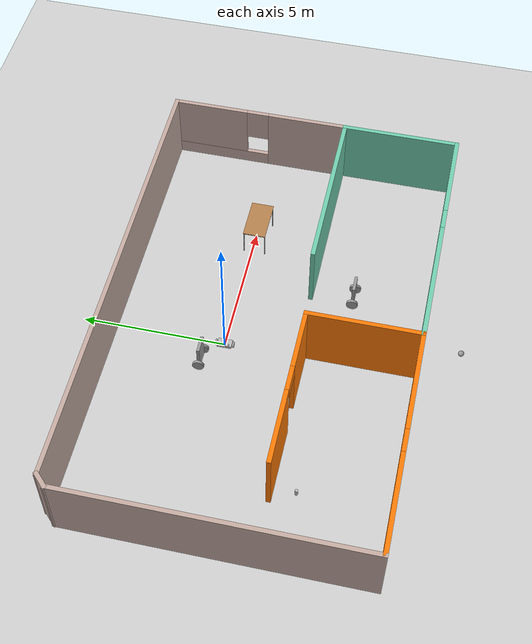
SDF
<sdf version="1.6">
 <world name="default">
  <plugin name="welcome_message" filename="libwelcome_message.so"/>
  <light name="sun" type="directional">
   <pose>0 0 10 0 -0 0</pose>
   <diffuse>0.8 0.8 0.8 1</diffuse>
   <specular>0.1 0.1 0.1 1</specular>
   <attenuation>
    <range>1000</range>
    <constant>0.9</constant>
    <linear>0.01</linear>
    <quadratic>0.001</quadratic>
   </attenuation>
   <direction>-0.5 0.5 -1</direction>
  </light>
  <model name="ground_plane">
   <static>1</static>
   <link name="link">
    <collision name="collision">
     <geometry><plane><normal>0 0 1</normal><size>100 100</size></plane></geometry>
     <surface><friction><ode><mu>100</mu><mu2>50</mu2></ode></friction></surface>
    </collision>
    <visual name="visual">
     <cast_shadows>0</cast_shadows>
     <geometry><plane><normal>0 0 1</normal><size>100 100</size></plane></geometry>
     <material>
      <script><uri>file://media/materials/scripts/gazebo.material</uri><name>Gazebo/Grey</name></script>
     </material>
    </visual>
   </link>
  </model>
  <gravity>0 0 -9.8</gravity>
  <magnetic_field>6e-06 2.3e-05 -4.2e-05</magnetic_field>
  <atmosphere type="adiabatic"/>
  <physics name="default_physics" default="0" type="ode">
   <max_step_size>0.001</max_step_size>
   <real_time_factor>1</real_time_factor>
   <real_time_update_rate>1000</real_time_update_rate>
  </physics>
  <scene><ambient>0.4 0.4 0.4 1</ambient><background>0.7 0.7 0.7 1</background><shadows>1</shadows></scene>
  <spherical_coordinates>
   <surface_model>EARTH_WGS84</surface_model>
   <latitude_deg>0</latitude_deg>
   <longitude_deg>0</longitude_deg>
   <elevation>0</elevation>
   <heading_deg>0</heading_deg>
  </spherical_coordinates>
  <model name="project1_robot">
   <link name="link_0">
    <pose>-0.000665 0 0.199997 0 -0 0</pose>
    <inertial>
     <mass>1</mass>
     <inertia>
      <ixx>0.166667</ixx>
      <ixy>0</ixy>
      <ixz>0</ixz>
      <iyy>0.166667</iyy>
      <iyz>0</iyz>
      <izz>0.166667</izz>
     </inertia>
    </inertial>
    <visual name="visual">
     <geometry><box><size>0.6 0.1 0.9</size></box></geometry>
     <material>
      <lighting>1</lighting>
      <script><uri>file://media/materials/scripts/gazebo.material</uri><name>Gazebo/Grey</name></script>
      <shader type="pixel"><normal_map>__default__</normal_map></shader>
      <ambient>0.3 0.3 0.3 1</ambient>
      <diffuse>0.7 0.7 0.7 1</diffuse>
      <specular>0.01 0.01 0.01 1</specular>
      <emissive>0 0 0 1</emissive>
     </material>
    </visual>
    <collision name="collision">
     <geometry><box><size>0.6 0.1 1</size></box></geometry>
     <surface>
      <friction>
       <ode><mu>1</mu><mu2>1</mu2><fdir1>0 0 0</fdir1><slip1>0</slip1><slip2>0</slip2></ode>
       <torsional>
        <coefficient>1</coefficient>
        <patch_radius>0</patch_radius>
        <surface_radius>0</surface_radius>
        <use_patch_radius>1</use_patch_radius>
        <ode><slip>0</slip></ode>
       </torsional>
      </friction>
      <bounce><restitution_coefficient>0</restitution_coefficient><threshold>1e+06</threshold></bounce>
      <contact>
       <collide_without_contact>0</collide_without_contact>
       <collide_without_contact_bitmask>1</collide_without_contact_bitmask>
       <collide_bitmask>1</collide_bitmask>
       <ode>
        <soft_cfm>0</soft_cfm>
        <soft_erp>0.2</soft_erp>
        <kp>1e+13</kp>
        <kd>1</kd>
        <max_vel>0.01</max_vel>
        <min_depth>0</min_depth>
       </ode>
       <bullet>
        <split_impulse>1</split_impulse>
        <split_impulse_penetration_threshold>-0.01</split_impulse_penetration_threshold>
        <soft_cfm>0</soft_cfm>
        <soft_erp>0.2</soft_erp>
        <kp>1e+13</kp>
        <kd>1</kd>
       </bullet>
      </contact>
     </surface>
    </collision>
   </link>
   <link name="link_1">
    <pose>0.351352 -0 -0.099508 0 -0.01 0</pose>
    <inertial>
     <mass>1</mass>
     <inertia><ixx>0.145833</ixx><ixy>0</ixy><ixz>0</ixz><iyy>0.145833</iyy><iyz>0</iyz><izz>0.125</izz></inertia>
    </inertial>
    <visual name="visual">
     <pose>0 0 0 0 1.5707 0</pose>
     <geometry><cylinder><radius>0.2</radius><length>0.1</length></cylinder></geometry>
     <material>
      <lighting>1</lighting>
      <script><uri>file://media/materials/scripts/gazebo.material</uri><name>Gazebo/Grey</name></script>
      <shader type="pixel"><normal_map>__default__</normal_map></shader>
      <ambient>0.3 0.3 0.3 1</ambient>
      <diffuse>0.7 0.7 0.7 1</diffuse>
      <specular>0.01 0.01 0.01 1</specular>
      <emissive>0 0 0 1</emissive>
     </material>
    </visual>
    <collision name="collision">
     <pose>0 0 0 0 1.5707 0</pose>
     <geometry><cylinder><radius>0.2</radius><length>0.1</length></cylinder></geometry>
     <surface>
      <friction>
       <ode><mu>1</mu><mu2>1</mu2><fdir1>0 0 0</fdir1><slip1>0</slip1><slip2>0</slip2></ode>
       <torsional>
        <coefficient>1</coefficient>
        <patch_radius>0</patch_radius>
        <surface_radius>0</surface_radius>
        <use_patch_radius>1</use_patch_radius>
        <ode><slip>0</slip></ode>
       </torsional>
      </friction>
      <bounce><restitution_coefficient>0</restitution_coefficient><threshold>1e+06</threshold></bounce>
      <contact>
       <collide_without_contact>0</collide_without_contact>
       <collide_without_contact_bitmask>1</collide_without_contact_bitmask>
       <collide_bitmask>1</collide_bitmask>
       <ode>
        <soft_cfm>0</soft_cfm>
        <soft_erp>0.2</soft_erp>
        <kp>1e+13</kp>
        <kd>1</kd>
        <max_vel>0.01</max_vel>
        <min_depth>0</min_depth>
       </ode>
       <bullet>
        <split_impulse>1</split_impulse>
        <split_impulse_penetration_threshold>-0.01</split_impulse_penetration_threshold>
        <soft_cfm>0</soft_cfm>
        <soft_erp>0.2</soft_erp>
        <kp>1e+13</kp>
        <kd>1</kd>
       </bullet>
      </contact>
     </surface>
    </collision>
   </link>
   <link name="link_1_clone">
    <pose>-0.350684 0 -0.099999 0 -0 0</pose>
    <inertial>
     <mass>1</mass>
     <inertia><ixx>0.145833</ixx><ixy>0</ixy><ixz>0</ixz><iyy>0.145833</iyy><iyz>0</iyz><izz>0.125</izz></inertia>
    </inertial>
    <visual name="visual">
     <pose>0 0 0 0 1.5707 0</pose>
     <geometry><cylinder><radius>0.2</radius><length>0.1</length></cylinder></geometry>
     <material>
      <lighting>1</lighting>
      <script><uri>file://media/materials/scripts/gazebo.material</uri><name>Gazebo/Grey</name></script>
      <shader type="pixel"><normal_map>__default__</normal_map></shader>
      <ambient>0.3 0.3 0.3 1</ambient>
      <diffuse>0.7 0.7 0.7 1</diffuse>
      <specular>0.01 0.01 0.01 1</specular>
      <emissive>0 0 0 1</emissive>
     </material>
    </visual>
    <collision name="collision">
     <pose>0 0 0 0 1.5707 0</pose>
     <geometry><cylinder><radius>0.2</radius><length>0.1</length></cylinder></geometry>
     <surface>
      <friction>
       <ode><mu>1</mu><mu2>1</mu2><fdir1>0 0 0</fdir1><slip1>0</slip1><slip2>0</slip2></ode>
       <torsional>
        <coefficient>1</coefficient>
        <patch_radius>0</patch_radius>
        <surface_radius>0</surface_radius>
        <use_patch_radius>1</use_patch_radius>
        <ode><slip>0</slip></ode>
       </torsional>
      </friction>
      <bounce><restitution_coefficient>0</restitution_coefficient><threshold>1e+06</threshold></bounce>
      <contact>
       <collide_without_contact>0</collide_without_contact>
       <collide_without_contact_bitmask>1</collide_without_contact_bitmask>
       <collide_bitmask>1</collide_bitmask>
       <ode>
        <soft_cfm>0</soft_cfm>
        <soft_erp>0.2</soft_erp>
        <kp>1e+13</kp>
        <kd>1</kd>
        <max_vel>0.01</max_vel>
        <min_depth>0</min_depth>
       </ode>
       <bullet>
        <split_impulse>1</split_impulse>
        <split_impulse_penetration_threshold>-0.01</split_impulse_penetration_threshold>
        <soft_cfm>0</soft_cfm>
        <soft_erp>0.2</soft_erp>
        <kp>1e+13</kp>
        <kd>1</kd>
       </bullet>
      </contact>
     </surface>
    </collision>
   </link>
   <joint name="link_0_JOINT_1" type="revolute2">
    <parent>link_0</parent>
    <child>link_1</child>
    <axis>
     <xyz>1 0 0</xyz>
     <use_parent_model_frame>0</use_parent_model_frame>
     <limit>
      <lower>-1.79769e+308</lower>
      <upper>1.79769e+308</upper>
      <effort>-1</effort>
      <velocity>-1</velocity>
     </limit>
     <dynamics>
      <spring_reference>0</spring_reference>
      <spring_stiffness>0</spring_stiffness>
      <damping>0</damping>
     </dynamics>
    </axis>
    <axis2>
     <xyz>0 1 0</xyz>
     <use_parent_model_frame>0</use_parent_model_frame>
     <dynamics>
      <spring_reference>0</spring_reference>
      <spring_stiffness>0</spring_stiffness>
      <damping>0</damping>
     </dynamics>
     <limit>
      <lower>-1.79769e+308</lower>
      <upper>1.79769e+308</upper>
      <effort>-1</effort>
      <velocity>-1</velocity>
     </limit>
    </axis2>
    <physics>
     <ode><limit><cfm>0</cfm><erp>0.2</erp></limit><suspension><cfm>0</cfm><erp>0.2</erp></suspension></ode>
    </physics>
   </joint>
   <joint name="link_1_clone_JOINT_2" type="revolute2">
    <parent>link_0</parent>
    <child>link_1_clone</child>
    <axis>
     <xyz>1 0 0</xyz>
     <use_parent_model_frame>0</use_parent_model_frame>
     <limit>
      <lower>-1.79769e+308</lower>
      <upper>1.79769e+308</upper>
      <effort>-1</effort>
      <velocity>-1</velocity>
     </limit>
     <dynamics>
      <spring_reference>0</spring_reference>
      <spring_stiffness>0</spring_stiffness>
      <damping>0</damping>
     </dynamics>
    </axis>
    <axis2>
     <xyz>0 1 0</xyz>
     <use_parent_model_frame>0</use_parent_model_frame>
     <dynamics>
      <spring_reference>0</spring_reference>
      <spring_stiffness>0</spring_stiffness>
      <damping>0</damping>
     </dynamics>
     <limit>
      <lower>-1.79769e+308</lower>
      <upper>1.79769e+308</upper>
      <effort>-1</effort>
      <velocity>-1</velocity>
     </limit>
    </axis2>
    <physics>
     <ode><limit><cfm>0</cfm><erp>0.2</erp></limit><suspension><cfm>0</cfm><erp>0.2</erp></suspension></ode>
    </physics>
   </joint>
   <static>0</static>
   <pose>-0.781355 0.647883 0.300139 1e-06 0.000454 0.009703</pose>
  </model>
  <model name="table">
   <static>1</static>
   <link name="link">
    <collision name="surface">
     <pose>0 0 1 0 -0 0</pose>
     <geometry><box><size>1.5 0.8 0.03</size></box></geometry>
     <surface><friction><ode><mu>0.6</mu><mu2>0.6</mu2></ode></friction></surface>
    </collision>
    <visual name="visual1">
     <pose>0 0 1 0 -0 0</pose>
     <geometry><box><size>1.5 0.8 0.03</size></box></geometry>
     <material>
      <script><uri>file://media/materials/scripts/gazebo.material</uri><name>Gazebo/Wood</name></script>
     </material>
    </visual>
    <collision name="front_left_leg">
     <pose>0.68 0.38 0.5 0 -0 0</pose>
     <geometry><cylinder><radius>0.02</radius><length>1</length></cylinder></geometry>
    </collision>
    <visual name="front_left_leg">
     <pose>0.68 0.38 0.5 0 -0 0</pose>
     <geometry><cylinder><radius>0.02</radius><length>1</length></cylinder></geometry>
     <material>
      <script><uri>file://media/materials/scripts/gazebo.material</uri><name>Gazebo/Grey</name></script>
     </material>
    </visual>
    <collision name="front_right_leg">
     <pose>0.68 -0.38 0.5 0 -0 0</pose>
     <geometry><cylinder><radius>0.02</radius><length>1</length></cylinder></geometry>
    </collision>
    <visual name="front_right_leg">
     <pose>0.68 -0.38 0.5 0 -0 0</pose>
     <geometry><cylinder><radius>0.02</radius><length>1</length></cylinder></geometry>
     <material>
      <script><uri>file://media/materials/scripts/gazebo.material</uri><name>Gazebo/Grey</name></script>
     </material>
    </visual>
    <collision name="back_right_leg">
     <pose>-0.68 -0.38 0.5 0 -0 0</pose>
     <geometry><cylinder><radius>0.02</radius><length>1</length></cylinder></geometry>
    </collision>
    <visual name="back_right_leg">
     <pose>-0.68 -0.38 0.5 0 -0 0</pose>
     <geometry><cylinder><radius>0.02</radius><length>1</length></cylinder></geometry>
     <material>
      <script><uri>file://media/materials/scripts/gazebo.material</uri><name>Gazebo/Grey</name></script>
     </material>
    </visual>
    <collision name="back_left_leg">
     <pose>-0.68 0.38 0.5 0 -0 0</pose>
     <geometry><cylinder><radius>0.02</radius><length>1</length></cylinder></geometry>
    </collision>
    <visual name="back_left_leg">
     <pose>-0.68 0.38 0.5 0 -0 0</pose>
     <geometry><cylinder><radius>0.02</radius><length>1</length></cylinder></geometry>
     <material>
      <script><uri>file://media/materials/scripts/gazebo.material</uri><name>Gazebo/Grey</name></script>
     </material>
    </visual>
   </link>
   <pose>4.91982 -0.080805 0 0 -0 0</pose>
  </model>
  <model name="beer">
   <link name="link">
    <pose>0 0 0.115 0 -0 0</pose>
    <inertial>
     <mass>0.39</mass>
     <inertia><ixx>0.00058</ixx><ixy>0</ixy><ixz>0</ixz><iyy>0.00058</iyy><iyz>0</iyz><izz>0.00019</izz></inertia>
    </inertial>
    <collision name="collision">
     <geometry><cylinder><radius>0.055</radius><length>0.23</length></cylinder></geometry>
    </collision>
    <visual name="visual">
     <geometry><cylinder><radius>0.055</radius><length>0.23</length></cylinder></geometry>
     <material>
      <script>
       <uri>model://beer/materials/scripts</uri>
       <uri>model://beer/materials/textures</uri>
       <name>Beer/Diffuse</name>
      </script>
     </material>
    </visual>
   </link>
   <pose>-5.06977 -3.53298 -7e-06 0 0 -1.5e-05</pose>
  </model>
  <model name="project1_robot_0">
   <link name="link_0">
    <pose>-0.000665 0 0.199997 0 -0 0</pose>
    <inertial>
     <mass>1</mass>
     <inertia>
      <ixx>0.166667</ixx>
      <ixy>0</ixy>
      <ixz>0</ixz>
      <iyy>0.166667</iyy>
      <iyz>0</iyz>
      <izz>0.166667</izz>
     </inertia>
    </inertial>
    <visual name="visual">
     <geometry><box><size>0.6 0.1 0.9</size></box></geometry>
     <material>
      <lighting>1</lighting>
      <script><uri>file://media/materials/scripts/gazebo.material</uri><name>Gazebo/Grey</name></script>
      <shader type="pixel"><normal_map>__default__</normal_map></shader>
      <ambient>0.3 0.3 0.3 1</ambient>
      <diffuse>0.7 0.7 0.7 1</diffuse>
      <specular>0.01 0.01 0.01 1</specular>
      <emissive>0 0 0 1</emissive>
     </material>
    </visual>
    <collision name="collision">
     <geometry><box><size>0.6 0.1 1</size></box></geometry>
     <surface>
      <friction>
       <ode><mu>1</mu><mu2>1</mu2><fdir1>0 0 0</fdir1><slip1>0</slip1><slip2>0</slip2></ode>
       <torsional>
        <coefficient>1</coefficient>
        <patch_radius>0</patch_radius>
        <surface_radius>0</surface_radius>
        <use_patch_radius>1</use_patch_radius>
        <ode><slip>0</slip></ode>
       </torsional>
      </friction>
      <bounce><restitution_coefficient>0</restitution_coefficient><threshold>1e+06</threshold></bounce>
      <contact>
       <collide_without_contact>0</collide_without_contact>
       <collide_without_contact_bitmask>1</collide_without_contact_bitmask>
       <collide_bitmask>1</collide_bitmask>
       <ode>
        <soft_cfm>0</soft_cfm>
        <soft_erp>0.2</soft_erp>
        <kp>1e+13</kp>
        <kd>1</kd>
        <max_vel>0.01</max_vel>
        <min_depth>0</min_depth>
       </ode>
       <bullet>
        <split_impulse>1</split_impulse>
        <split_impulse_penetration_threshold>-0.01</split_impulse_penetration_threshold>
        <soft_cfm>0</soft_cfm>
        <soft_erp>0.2</soft_erp>
        <kp>1e+13</kp>
        <kd>1</kd>
       </bullet>
      </contact>
     </surface>
    </collision>
   </link>
   <link name="link_1">
    <pose>0.351352 -0 -0.099508 0 -0.01 0</pose>
    <inertial>
     <mass>1</mass>
     <inertia><ixx>0.145833</ixx><ixy>0</ixy><ixz>0</ixz><iyy>0.145833</iyy><iyz>0</iyz><izz>0.125</izz></inertia>
    </inertial>
    <visual name="visual">
     <pose>0 0 0 0 1.5707 0</pose>
     <geometry><cylinder><radius>0.2</radius><length>0.1</length></cylinder></geometry>
     <material>
      <lighting>1</lighting>
      <script><uri>file://media/materials/scripts/gazebo.material</uri><name>Gazebo/Grey</name></script>
      <shader type="pixel"><normal_map>__default__</normal_map></shader>
      <ambient>0.3 0.3 0.3 1</ambient>
      <diffuse>0.7 0.7 0.7 1</diffuse>
      <specular>0.01 0.01 0.01 1</specular>
      <emissive>0 0 0 1</emissive>
     </material>
    </visual>
    <collision name="collision">
     <pose>0 0 0 0 1.5707 0</pose>
     <geometry><cylinder><radius>0.2</radius><length>0.1</length></cylinder></geometry>
     <surface>
      <friction>
       <ode><mu>1</mu><mu2>1</mu2><fdir1>0 0 0</fdir1><slip1>0</slip1><slip2>0</slip2></ode>
       <torsional>
        <coefficient>1</coefficient>
        <patch_radius>0</patch_radius>
        <surface_radius>0</surface_radius>
        <use_patch_radius>1</use_patch_radius>
        <ode><slip>0</slip></ode>
       </torsional>
      </friction>
      <bounce><restitution_coefficient>0</restitution_coefficient><threshold>1e+06</threshold></bounce>
      <contact>
       <collide_without_contact>0</collide_without_contact>
       <collide_without_contact_bitmask>1</collide_without_contact_bitmask>
       <collide_bitmask>1</collide_bitmask>
       <ode>
        <soft_cfm>0</soft_cfm>
        <soft_erp>0.2</soft_erp>
        <kp>1e+13</kp>
        <kd>1</kd>
        <max_vel>0.01</max_vel>
        <min_depth>0</min_depth>
       </ode>
       <bullet>
        <split_impulse>1</split_impulse>
        <split_impulse_penetration_threshold>-0.01</split_impulse_penetration_threshold>
        <soft_cfm>0</soft_cfm>
        <soft_erp>0.2</soft_erp>
        <kp>1e+13</kp>
        <kd>1</kd>
       </bullet>
      </contact>
     </surface>
    </collision>
   </link>
   <link name="link_1_clone">
    <pose>-0.350684 0 -0.099999 0 -0 0</pose>
    <inertial>
     <mass>1</mass>
     <inertia><ixx>0.145833</ixx><ixy>0</ixy><ixz>0</ixz><iyy>0.145833</iyy><iyz>0</iyz><izz>0.125</izz></inertia>
    </inertial>
    <visual name="visual">
     <pose>0 0 0 0 1.5707 0</pose>
     <geometry><cylinder><radius>0.2</radius><length>0.1</length></cylinder></geometry>
     <material>
      <lighting>1</lighting>
      <script><uri>file://media/materials/scripts/gazebo.material</uri><name>Gazebo/Grey</name></script>
      <shader type="pixel"><normal_map>__default__</normal_map></shader>
      <ambient>0.3 0.3 0.3 1</ambient>
      <diffuse>0.7 0.7 0.7 1</diffuse>
      <specular>0.01 0.01 0.01 1</specular>
      <emissive>0 0 0 1</emissive>
     </material>
    </visual>
    <collision name="collision">
     <pose>0 0 0 0 1.5707 0</pose>
     <geometry><cylinder><radius>0.2</radius><length>0.1</length></cylinder></geometry>
     <surface>
      <friction>
       <ode><mu>1</mu><mu2>1</mu2><fdir1>0 0 0</fdir1><slip1>0</slip1><slip2>0</slip2></ode>
       <torsional>
        <coefficient>1</coefficient>
        <patch_radius>0</patch_radius>
        <surface_radius>0</surface_radius>
        <use_patch_radius>1</use_patch_radius>
        <ode><slip>0</slip></ode>
       </torsional>
      </friction>
      <bounce><restitution_coefficient>0</restitution_coefficient><threshold>1e+06</threshold></bounce>
      <contact>
       <collide_without_contact>0</collide_without_contact>
       <collide_without_contact_bitmask>1</collide_without_contact_bitmask>
       <collide_bitmask>1</collide_bitmask>
       <ode>
        <soft_cfm>0</soft_cfm>
        <soft_erp>0.2</soft_erp>
        <kp>1e+13</kp>
        <kd>1</kd>
        <max_vel>0.01</max_vel>
        <min_depth>0</min_depth>
       </ode>
       <bullet>
        <split_impulse>1</split_impulse>
        <split_impulse_penetration_threshold>-0.01</split_impulse_penetration_threshold>
        <soft_cfm>0</soft_cfm>
        <soft_erp>0.2</soft_erp>
        <kp>1e+13</kp>
        <kd>1</kd>
       </bullet>
      </contact>
     </surface>
    </collision>
   </link>
   <joint name="link_0_JOINT_1" type="revolute2">
    <parent>link_0</parent>
    <child>link_1</child>
    <axis>
     <xyz>1 0 0</xyz>
     <use_parent_model_frame>0</use_parent_model_frame>
     <limit>
      <lower>-1.79769e+308</lower>
      <upper>1.79769e+308</upper>
      <effort>-1</effort>
      <velocity>-1</velocity>
     </limit>
     <dynamics>
      <spring_reference>0</spring_reference>
      <spring_stiffness>0</spring_stiffness>
      <damping>0</damping>
     </dynamics>
    </axis>
    <axis2>
     <xyz>0 1 0</xyz>
     <use_parent_model_frame>0</use_parent_model_frame>
     <dynamics>
      <spring_reference>0</spring_reference>
      <spring_stiffness>0</spring_stiffness>
      <damping>0</damping>
     </dynamics>
     <limit>
      <lower>-1.79769e+308</lower>
      <upper>1.79769e+308</upper>
      <effort>-1</effort>
      <velocity>-1</velocity>
     </limit>
    </axis2>
    <physics>
     <ode><limit><cfm>0</cfm><erp>0.2</erp></limit><suspension><cfm>0</cfm><erp>0.2</erp></suspension></ode>
    </physics>
   </joint>
   <joint name="link_1_clone_JOINT_2" type="revolute2">
    <parent>link_0</parent>
    <child>link_1_clone</child>
    <axis>
     <xyz>1 0 0</xyz>
     <use_parent_model_frame>0</use_parent_model_frame>
     <limit>
      <lower>-1.79769e+308</lower>
      <upper>1.79769e+308</upper>
      <effort>-1</effort>
      <velocity>-1</velocity>
     </limit>
     <dynamics>
      <spring_reference>0</spring_reference>
      <spring_stiffness>0</spring_stiffness>
      <damping>0</damping>
     </dynamics>
    </axis>
    <axis2>
     <xyz>0 1 0</xyz>
     <use_parent_model_frame>0</use_parent_model_frame>
     <dynamics>
      <spring_reference>0</spring_reference>
      <spring_stiffness>0</spring_stiffness>
      <damping>0</damping>
     </dynamics>
     <limit>
      <lower>-1.79769e+308</lower>
      <upper>1.79769e+308</upper>
      <effort>-1</effort>
      <velocity>-1</velocity>
     </limit>
    </axis2>
    <physics>
     <ode><limit><cfm>0</cfm><erp>0.2</erp></limit><suspension><cfm>0</cfm><erp>0.2</erp></suspension></ode>
    </physics>
   </joint>
   <static>0</static>
   <pose>2.86085 -3.9616 0.300125 0 0.000409 0.007406</pose>
  </model>
  <model name="house">
   <pose>0.48898 -1.33717 0 0 -0 0</pose>
   <link name="Wall_0">
    <collision name="Wall_0_Collision">
     <geometry><box><size>10.25 0.15 2.5</size></box></geometry>
     <pose>0 0 1.25 0 -0 0</pose>
    </collision>
    <visual name="Wall_0_Visual">
     <pose>0 0 1.25 0 -0 0</pose>
     <geometry><box><size>10.25 0.15 2.5</size></box></geometry>
     <material>
      <script><uri>file://media/materials/scripts/gazebo.material</uri><name>Gazebo/Grey</name></script>
      <ambient>0.760784 0.662745 0.627451 1</ambient>
     </material>
     <meta><layer>0</layer></meta>
    </visual>
    <pose>-8.20947 -0.190533 0 0 0 -1.5708</pose>
   </link>
   <link name="Wall_10">
    <pose>8.24053 2.03447 0 0 -0 1.5708</pose>
    <visual name="Wall_10_Visual_0">
     <pose>-1.78129 0 1.25 0 -0 0</pose>
     <geometry><box><size>2.93743 0.15 2.5</size></box></geometry>
     <material>
      <script><uri>file://media/materials/scripts/gazebo.material</uri><name>Gazebo/Grey</name></script>
      <ambient>0.760784 0.662745 0.627451 1</ambient>
     </material>
     <meta><layer>0</layer></meta>
    </visual>
    <collision name="Wall_10_Collision_0">
     <geometry><box><size>2.93743 0.15 2.5</size></box></geometry>
     <pose>-1.78129 0 1.25 0 -0 0</pose>
    </collision>
    <visual name="Wall_10_Visual_1">
     <pose>1.46871 0 0.25 0 -0 0</pose>
     <geometry><box><size>3.56257 0.15 0.5</size></box></geometry>
     <material>
      <script><uri>file://media/materials/scripts/gazebo.material</uri><name>Gazebo/Grey</name></script>
      <ambient>0.760784 0.662745 0.627451 1</ambient>
     </material>
     <meta><layer>0</layer></meta>
    </visual>
    <collision name="Wall_10_Collision_1">
     <geometry><box><size>3.56257 0.15 0.5</size></box></geometry>
     <pose>1.46871 0 0.25 0 -0 0</pose>
    </collision>
    <visual name="Wall_10_Visual_2">
     <pose>1.86871 0 1.5 0 -0 0</pose>
     <geometry><box><size>2.76258 0.15 2</size></box></geometry>
     <material>
      <script><uri>file://media/materials/scripts/gazebo.material</uri><name>Gazebo/Grey</name></script>
      <ambient>0.760784 0.662745 0.627451 1</ambient>
     </material>
     <meta><layer>0</layer></meta>
    </visual>
    <collision name="Wall_10_Collision_2">
     <geometry><box><size>2.76258 0.15 2</size></box></geometry>
     <pose>1.86871 0 1.5 0 -0 0</pose>
    </collision>
    <visual name="Wall_10_Visual_3">
     <pose>0.087425 0 1.9 0 -0 0</pose>
     <geometry><box><size>0.8 0.15 1.2</size></box></geometry>
     <material>
      <script><uri>file://media/materials/scripts/gazebo.material</uri><name>Gazebo/Grey</name></script>
      <ambient>0.760784 0.662745 0.627451 1</ambient>
     </material>
     <meta><layer>0</layer></meta>
    </visual>
    <collision name="Wall_10_Collision_3">
     <geometry><box><size>0.8 0.15 1.2</size></box></geometry>
     <pose>0.087425 0 1.9 0 -0 0</pose>
    </collision>
   </link>
   <link name="Wall_11">
    <collision name="Wall_11_Collision">
     <geometry><box><size>16.25 0.15 2.5</size></box></geometry>
     <pose>0 0 1.25 0 -0 0</pose>
    </collision>
    <visual name="Wall_11_Visual">
     <pose>0 0 1.25 0 -0 0</pose>
     <geometry><box><size>16.25 0.15 2.5</size></box></geometry>
     <material>
      <script><uri>file://media/materials/scripts/gazebo.material</uri><name>Gazebo/Grey</name></script>
      <ambient>0.760784 0.662745 0.627451 1</ambient>
     </material>
     <meta><layer>0</layer></meta>
    </visual>
    <pose>0.190533 5.20947 0 0 -0 3.14159</pose>
   </link>
   <link name="Wall_12">
    <collision name="Wall_12_Collision">
     <geometry><box><size>0.644975 0.15 2.5</size></box></geometry>
     <pose>0 0 1.25 0 -0 0</pose>
    </collision>
    <visual name="Wall_12_Visual">
     <pose>0 0 1.25 0 -0 0</pose>
     <geometry><box><size>0.644975 0.15 2.5</size></box></geometry>
     <material>
      <script><uri>file://media/materials/scripts/gazebo.material</uri><name>Gazebo/Grey</name></script>
      <ambient>0.760784 0.662745 0.627451 1</ambient>
     </material>
     <meta><layer>0</layer></meta>
    </visual>
    <pose>-8.03447 5.03447 0 0 0 -2.35619</pose>
   </link>
   <link name="Wall_2">
    <pose>-4.28447 -5.24053 0 0 -0 0</pose>
    <visual name="Wall_2_Visual_0">
     <pose>-2.2462 0 1.25 0 -0 0</pose>
     <geometry><box><size>3.5076 0.15 2.5</size></box></geometry>
     <material>
      <script><uri>file://media/materials/scripts/gazebo.material</uri><name>Gazebo/Grey</name></script>
      <ambient>0.996078 0.47451 0.0196078 1</ambient>
     </material>
     <meta><layer>0</layer></meta>
    </visual>
    <collision name="Wall_2_Collision_0">
     <geometry><box><size>3.5076 0.15 2.5</size></box></geometry>
     <pose>-2.2462 0 1.25 0 -0 0</pose>
    </collision>
    <visual name="Wall_2_Visual_1">
     <pose>1.7538 0 0.25 0 -0 0</pose>
     <geometry><box><size>4.4924 0.15 0.5</size></box></geometry>
     <material>
      <script><uri>file://media/materials/scripts/gazebo.material</uri><name>Gazebo/Grey</name></script>
      <ambient>0.996078 0.47451 0.0196078 1</ambient>
     </material>
     <meta><layer>0</layer></meta>
    </visual>
    <collision name="Wall_2_Collision_1">
     <geometry><box><size>4.4924 0.15 0.5</size></box></geometry>
     <pose>1.7538 0 0.25 0 -0 0</pose>
    </collision>
    <visual name="Wall_2_Visual_2">
     <pose>2.1538 0 1.5 0 -0 0</pose>
     <geometry><box><size>3.69239 0.15 2</size></box></geometry>
     <material>
      <script><uri>file://media/materials/scripts/gazebo.material</uri><name>Gazebo/Grey</name></script>
      <ambient>0.996078 0.47451 0.0196078 1</ambient>
     </material>
     <meta><layer>0</layer></meta>
    </visual>
    <collision name="Wall_2_Collision_2">
     <geometry><box><size>3.69239 0.15 2</size></box></geometry>
     <pose>2.1538 0 1.5 0 -0 0</pose>
    </collision>
    <visual name="Wall_2_Visual_3">
     <pose>-0.092395 0 1.9 0 -0 0</pose>
     <geometry><box><size>0.8 0.15 1.2</size></box></geometry>
     <material>
      <script><uri>file://media/materials/scripts/gazebo.material</uri><name>Gazebo/Grey</name></script>
      <ambient>0.996078 0.47451 0.0196078 1</ambient>
     </material>
     <meta><layer>0</layer></meta>
    </visual>
    <collision name="Wall_2_Collision_3">
     <geometry><box><size>0.8 0.15 1.2</size></box></geometry>
     <pose>-0.092395 0 1.9 0 -0 0</pose>
    </collision>
   </link>
   <link name="Wall_3">
    <collision name="Wall_3_Collision">
     <geometry><box><size>4 0.15 2.5</size></box></geometry>
     <pose>0 0 1.25 0 -0 0</pose>
    </collision>
    <visual name="Wall_3_Visual">
     <pose>0 0 1.25 0 -0 0</pose>
     <geometry><box><size>4 0.15 2.5</size></box></geometry>
     <material>
      <script><uri>file://media/materials/scripts/gazebo.material</uri><name>Gazebo/Grey</name></script>
      <ambient>0.996078 0.47451 0.0196078 1</ambient>
     </material>
     <meta><layer>0</layer></meta>
    </visual>
    <pose>-0.359467 -3.31553 0 0 -0 1.5708</pose>
   </link>
   <link name="Wall_4">
    <pose>-3.15947 -1.39053 0 0 -0 3.14159</pose>
    <visual name="Wall_4_Visual_0">
     <pose>-1.76861 0 1.25 0 -0 0</pose>
     <geometry><box><size>2.21277 0.15 2.5</size></box></geometry>
     <material>
      <script><uri>file://media/materials/scripts/gazebo.material</uri><name>Gazebo/Grey</name></script>
      <ambient>0.996078 0.47451 0.0196078 1</ambient>
     </material>
     <meta><layer>0</layer></meta>
    </visual>
    <collision name="Wall_4_Collision_0">
     <geometry><box><size>2.21277 0.15 2.5</size></box></geometry>
     <pose>-1.76861 0 1.25 0 -0 0</pose>
    </collision>
    <visual name="Wall_4_Visual_1">
     <pose>1.55639 0 1.25 0 -0 0</pose>
     <geometry><box><size>2.63723 0.15 2.5</size></box></geometry>
     <material>
      <script><uri>file://media/materials/scripts/gazebo.material</uri><name>Gazebo/Grey</name></script>
      <ambient>0.996078 0.47451 0.0196078 1</ambient>
     </material>
     <meta><layer>0</layer></meta>
    </visual>
    <collision name="Wall_4_Collision_1">
     <geometry><box><size>2.63723 0.15 2.5</size></box></geometry>
     <pose>1.55639 0 1.25 0 -0 0</pose>
    </collision>
    <visual name="Wall_4_Visual_2">
     <pose>-0.212228 0 2.25 0 -0 0</pose>
     <geometry><box><size>0.9 0.15 0.5</size></box></geometry>
     <material>
      <script><uri>file://media/materials/scripts/gazebo.material</uri><name>Gazebo/Grey</name></script>
      <ambient>0.996078 0.47451 0.0196078 1</ambient>
     </material>
     <meta><layer>0</layer></meta>
    </visual>
    <collision name="Wall_4_Collision_2">
     <geometry><box><size>0.9 0.15 0.5</size></box></geometry>
     <pose>-0.212228 0 2.25 0 -0 0</pose>
    </collision>
   </link>
   <link name="Wall_6">
    <pose>3.94053 -5.24053 0 0 -0 0</pose>
    <visual name="Wall_6_Visual_0">
     <pose>-2.05962 0 1.25 0 -0 0</pose>
     <geometry><box><size>4.63077 0.15 2.5</size></box></geometry>
     <material>
      <script><uri>file://media/materials/scripts/gazebo.material</uri><name>Gazebo/Grey</name></script>
      <ambient>0.435294 0.796078 0.67451 1</ambient>
     </material>
     <meta><layer>0</layer></meta>
    </visual>
    <collision name="Wall_6_Collision_0">
     <geometry><box><size>4.63077 0.15 2.5</size></box></geometry>
     <pose>-2.05962 0 1.25 0 -0 0</pose>
    </collision>
    <visual name="Wall_6_Visual_1">
     <pose>2.31538 0 0.25 0 -0 0</pose>
     <geometry><box><size>4.11923 0.15 0.5</size></box></geometry>
     <material>
      <script><uri>file://media/materials/scripts/gazebo.material</uri><name>Gazebo/Grey</name></script>
      <ambient>0.435294 0.796078 0.67451 1</ambient>
     </material>
     <meta><layer>0</layer></meta>
    </visual>
    <collision name="Wall_6_Collision_1">
     <geometry><box><size>4.11923 0.15 0.5</size></box></geometry>
     <pose>2.31538 0 0.25 0 -0 0</pose>
    </collision>
    <visual name="Wall_6_Visual_2">
     <pose>2.71538 0 1.5 0 -0 0</pose>
     <geometry><box><size>3.31923 0.15 2</size></box></geometry>
     <material>
      <script><uri>file://media/materials/scripts/gazebo.material</uri><name>Gazebo/Grey</name></script>
      <ambient>0.435294 0.796078 0.67451 1</ambient>
     </material>
     <meta><layer>0</layer></meta>
    </visual>
    <collision name="Wall_6_Collision_2">
     <geometry><box><size>3.31923 0.15 2</size></box></geometry>
     <pose>2.71538 0 1.5 0 -0 0</pose>
    </collision>
    <visual name="Wall_6_Visual_3">
     <pose>0.655767 0 1.9 0 -0 0</pose>
     <geometry><box><size>0.8 0.15 1.2</size></box></geometry>
     <material>
      <script><uri>file://media/materials/scripts/gazebo.material</uri><name>Gazebo/Grey</name></script>
      <ambient>0.435294 0.796078 0.67451 1</ambient>
     </material>
     <meta><layer>0</layer></meta>
    </visual>
    <collision name="Wall_6_Collision_3">
     <geometry><box><size>0.8 0.15 1.2</size></box></geometry>
     <pose>0.655767 0 1.9 0 -0 0</pose>
    </collision>
   </link>
   <link name="Wall_7">
    <collision name="Wall_7_Collision">
     <geometry><box><size>4.25 0.15 2.5</size></box></geometry>
     <pose>0 0 1.25 0 -0 0</pose>
    </collision>
    <visual name="Wall_7_Visual">
     <pose>0 0 1.25 0 -0 0</pose>
     <geometry><box><size>4.25 0.15 2.5</size></box></geometry>
     <material>
      <script><uri>file://media/materials/scripts/gazebo.material</uri><name>Gazebo/Grey</name></script>
      <ambient>0.435294 0.796078 0.67451 1</ambient>
     </material>
     <meta><layer>0</layer></meta>
    </visual>
    <pose>8.24053 -3.19053 0 0 -0 1.5708</pose>
   </link>
   <link name="Wall_8">
    <collision name="Wall_8_Collision">
     <geometry><box><size>6.25 0.15 2.5</size></box></geometry>
     <pose>0 0 1.25 0 -0 0</pose>
    </collision>
    <visual name="Wall_8_Visual">
     <pose>0 0 1.25 0 -0 0</pose>
     <geometry><box><size>6.25 0.15 2.5</size></box></geometry>
     <material>
      <script><uri>file://media/materials/scripts/gazebo.material</uri><name>Gazebo/Grey</name></script>
      <ambient>0.435294 0.796078 0.67451 1</ambient>
     </material>
     <meta><layer>0</layer></meta>
    </visual>
    <pose>5.19053 -1.14053 0 0 -0 3.14159</pose>
   </link>
   <static>1</static>
  </model>
  <model name="my_robot">
   <link name="robot_footprint">
    <inertial>
     <pose>0.001325 0 0 0 -0 0</pose>
     <mass>15.1</mass>
     <inertia>
      <ixx>0.100002</ixx>
      <ixy>0</ixy>
      <ixz>-1.48675e-07</ixz>
      <iyy>0.103976</iyy>
      <iyz>0</iyz>
      <izz>0.103976</izz>
     </inertia>
    </inertial>
    <collision name="robot_footprint_fixed_joint_lump__collision_collision">
     <geometry><box><size>0.3 0.5 0.1</size></box></geometry>
    </collision>
    <collision name="robot_footprint_fixed_joint_lump__back_caster_collision_collision_1">
     <pose>-0.1 0 -0.05 0 -0 0</pose>
     <geometry><sphere><radius>0.0499</radius></sphere></geometry>
    </collision>
    <collision name="robot_footprint_fixed_joint_lump__front_caster_collision_collision_2">
     <pose>0.1 0 -0.05 0 -0 0</pose>
     <geometry><sphere><radius>0.0499</radius></sphere></geometry>
    </collision>
    <collision name="robot_footprint_fixed_joint_lump__left_eye_collision_collision_3">
     <pose>-0.1 0.15 0.07 0 -0 0</pose>
     <geometry><sphere><radius>0.03</radius></sphere></geometry>
    </collision>
    <collision name="robot_footprint_fixed_joint_lump__right_eye_collision_collision_4">
     <pose>-0.1 -0.15 0.07 0 -0 0</pose>
     <geometry><sphere><radius>0.03</radius></sphere></geometry>
    </collision>
    <collision name="robot_footprint_fixed_joint_lump__camera_collision_collision_5">
     <pose>0.2 0 0 0 -0 0</pose>
     <geometry><box><size>0.05 0.05 0.05</size></box></geometry>
    </collision>
    <collision name="robot_footprint_fixed_joint_lump__hokuyo_collision_collision_6">
     <pose>0.15 0 0.1 0 -0 0</pose>
     <geometry>
      <mesh><scale>1 1 1</scale><uri>/home/workspace/catkin_ws/src/my_robot/meshes/hokuyo.dae</uri></mesh>
     </geometry>
    </collision>
    <visual name="robot_footprint_fixed_joint_lump__chassis_visual_visual">
     <geometry><box><size>0.3 0.5 0.1</size></box></geometry>
    </visual>
    <visual name="robot_footprint_fixed_joint_lump__back_caster_visual_visual_1">
     <pose>-0.1 0 -0.05 0 -0 0</pose>
     <geometry><sphere><radius>0.05</radius></sphere></geometry>
    </visual>
    <visual name="robot_footprint_fixed_joint_lump__front_caster_visual_visual_2">
     <pose>0.1 0 -0.05 0 -0 0</pose>
     <geometry><sphere><radius>0.05</radius></sphere></geometry>
    </visual>
    <visual name="robot_footprint_fixed_joint_lump__left_eye_visual_visual_3">
     <pose>-0.1 0.15 0.07 0 -0 0</pose>
     <geometry><sphere><radius>0.03</radius></sphere></geometry>
    </visual>
    <visual name="robot_footprint_fixed_joint_lump__right_eye_visual_visual_4">
     <pose>-0.1 -0.15 0.07 0 -0 0</pose>
     <geometry><sphere><radius>0.03</radius></sphere></geometry>
    </visual>
    <visual name="robot_footprint_fixed_joint_lump__camera_visual_visual_5">
     <pose>0.2 0 0 0 -0 0</pose>
     <geometry><box><size>0.05 0.05 0.05</size></box></geometry>
     <material>
      <script><name>Gazebo/Green</name><uri>file://media/materials/scripts/gazebo.material</uri></script>
     </material>
    </visual>
    <visual name="robot_footprint_fixed_joint_lump__hokuyo_visual_visual_6">
     <pose>0.15 0 0.1 0 -0 0</pose>
     <geometry><box><size>0.05 0.05 0.05</size></box></geometry>
     <material><script><uri>__default__</uri><name>__default__</name></script></material>
    </visual>
    <sensor name="camera1" type="camera">
     <update_rate>30</update_rate>
     <camera name="head">
      <horizontal_fov>1.39626</horizontal_fov>
      <image><width>800</width><height>800</height><format>R8G8B8</format></image>
      <clip><near>0.02</near><far>300</far></clip>
     </camera>
     <plugin name="camera_controller" filename="libgazebo_ros_camera.so">
      <alwaysOn>true</alwaysOn>
      <updateRate>0.0</updateRate>
      <cameraName>camera</cameraName>
      <imageTopicName>rgb/image_raw</imageTopicName>
      <cameraInfoTopicName>rgb/camera_info</cameraInfoTopicName>
      <frameName>camera</frameName>
      <hackBaseline>0.07</hackBaseline>
      <distortionK1>0.0</distortionK1>
      <distortionK2>0.0</distortionK2>
      <distortionK3>0.0</distortionK3>
      <distortionT1>0.0</distortionT1>
      <distortionT2>0.0</distortionT2>
      <robotNamespace>/</robotNamespace>
     </plugin>
     <pose>0.2 0 0 0 -0 0</pose>
    </sensor>
    <sensor name="head_hokuyo_sensor" type="ray">
     <visualize>0</visualize>
     <update_rate>40</update_rate>
     <ray>
      <scan>
       <horizontal>
        <samples>720</samples>
        <resolution>1</resolution>
        <min_angle>-1.5708</min_angle>
        <max_angle>1.5708</max_angle>
       </horizontal>
       <vertical><samples>1</samples><min_angle>0</min_angle><max_angle>0</max_angle></vertical>
      </scan>
      <range><min>0.1</min><max>30</max><resolution>0.01</resolution></range>
      <noise><type>gaussian</type><mean>0</mean><stddev>0.01</stddev></noise>
     </ray>
     <plugin name="gazebo_ros_head_hokuyo_controller" filename="libgazebo_ros_laser.so">
      <topicName>/scan</topicName>
      <frameName>hokuyo</frameName>
      <robotNamespace>/</robotNamespace>
     </plugin>
     <pose>0.15 0 0.1 0 -0 0</pose>
    </sensor>
   </link>
   <link name="left_wheel">
    <pose>0 0.3 0 0 -0 0</pose>
    <inertial>
     <pose>0 0 0 -0 1.5707 1.5707</pose>
     <mass>5</mass>
     <inertia><ixx>0.1</ixx><ixy>0</ixy><ixz>0</ixz><iyy>0.1</iyy><iyz>0</iyz><izz>0.1</izz></inertia>
    </inertial>
    <collision name="left_wheel_collision_collision">
     <pose>0 0 0 3.14159 1.57079 -1.57089</pose>
     <geometry><cylinder><length>0.05</length><radius>0.1</radius></cylinder></geometry>
    </collision>
    <visual name="left_wheel_visual_visual">
     <pose>0 0 0 3.14159 1.57079 -1.57089</pose>
     <geometry><cylinder><length>0.05</length><radius>0.1</radius></cylinder></geometry>
    </visual>
   </link>
   <joint name="left_wheel_hinge" type="revolute">
    <child>left_wheel</child>
    <parent>robot_footprint</parent>
    <axis>
     <xyz>0 1 0</xyz>
     <limit><lower>-1e+16</lower><upper>1e+16</upper></limit>
     <dynamics>
      <damping>1</damping>
      <friction>1</friction>
      <spring_reference>0</spring_reference>
      <spring_stiffness>0</spring_stiffness>
     </dynamics>
     <use_parent_model_frame>1</use_parent_model_frame>
    </axis>
   </joint>
   <link name="right_wheel">
    <pose>0 -0.3 0 0 -0 0</pose>
    <inertial>
     <pose>0 0 0 -0 1.5707 1.5707</pose>
     <mass>5</mass>
     <inertia><ixx>0.1</ixx><ixy>0</ixy><ixz>0</ixz><iyy>0.1</iyy><iyz>0</iyz><izz>0.1</izz></inertia>
    </inertial>
    <collision name="right_wheel_collision_collision">
     <pose>0 0 0 3.14159 1.57079 -1.57089</pose>
     <geometry><cylinder><length>0.05</length><radius>0.1</radius></cylinder></geometry>
    </collision>
    <visual name="right_wheel_visual_visual">
     <pose>0 0 0 3.14159 1.57079 -1.57089</pose>
     <geometry><cylinder><length>0.05</length><radius>0.1</radius></cylinder></geometry>
    </visual>
   </link>
   <joint name="right_wheel_hinge" type="revolute">
    <child>right_wheel</child>
    <parent>robot_footprint</parent>
    <axis>
     <xyz>0 1 0</xyz>
     <limit><lower>-1e+16</lower><upper>1e+16</upper></limit>
     <dynamics>
      <damping>1</damping>
      <friction>1</friction>
      <spring_reference>0</spring_reference>
      <spring_stiffness>0</spring_stiffness>
     </dynamics>
     <use_parent_model_frame>1</use_parent_model_frame>
    </axis>
   </joint>
   <static>0</static>
   <plugin name="differential_drive_controller" filename="libgazebo_ros_diff_drive.so">
    <legacyMode>false</legacyMode>
    <alwaysOn>true</alwaysOn>
    <updateRate>10</updateRate>
    <leftJoint>left_wheel_hinge</leftJoint>
    <rightJoint>right_wheel_hinge</rightJoint>
    <wheelSeparation>0.4</wheelSeparation>
    <wheelDiameter>0.2</wheelDiameter>
    <torque>10</torque>
    <commandTopic>cmd_vel</commandTopic>
    <odometryTopic>odom</odometryTopic>
    <odometryFrame>odom</odometryFrame>
    <robotBaseFrame>robot_footprint</robotBaseFrame>
    <publishWheelTF>false</publishWheelTF>
    <publishWheelJointState>false</publishWheelJointState>
    <rosDebugLevel>na</rosDebugLevel>
    <wheelAcceleration>0</wheelAcceleration>
    <wheelTorque>5</wheelTorque>
    <odometrySource>world</odometrySource>
    <publishTf>1</publishTf>
    <publishOdomTF>true</publishOdomTF>
    <robotNamespace>/</robotNamespace>
   </plugin>
   <pose>0.000685 -0.000158 0.1 2e-06 0.000992 0.00355</pose>
  </model>
  <model name="unit_sphere">
   <link name="link">
    <inertial>
     <mass>1</mass>
     <inertia><ixx>0.1</ixx><ixy>0</ixy><ixz>0</ixz><iyy>0.1</iyy><iyz>0</iyz><izz>0.1</izz></inertia>
    </inertial>
    <visual name="visual">
     <geometry><sphere><radius>0.1</radius></sphere></geometry>
     <material>
      <script><name>Gazebo/Grey</name><uri>file://media/materials/scripts/gazebo.material</uri></script>
      <shader type="pixel"><normal_map>__default__</normal_map></shader>
      <ambient>1 1 1 1</ambient>
      <diffuse>1 1 1 1</diffuse>
      <specular>1 1 1 1</specular>
      <emissive>1 1 1 1</emissive>
     </material>
    </visual>
    <collision name="collision">
     <geometry><sphere><radius>0.1</radius></sphere></geometry>
     <surface>
      <friction>
       <ode><mu>1</mu><mu2>1</mu2><fdir1>0 0 0</fdir1><slip1>0</slip1><slip2>0</slip2></ode>
       <torsional>
        <coefficient>1</coefficient>
        <patch_radius>0</patch_radius>
        <surface_radius>0</surface_radius>
        <use_patch_radius>1</use_patch_radius>
        <ode><slip>0</slip></ode>
       </torsional>
      </friction>
      <bounce><restitution_coefficient>0</restitution_coefficient><threshold>1e+06</threshold></bounce>
      <contact>
       <collide_without_contact>0</collide_without_contact>
       <collide_without_contact_bitmask>1</collide_without_contact_bitmask>
       <collide_bitmask>1</collide_bitmask>
       <ode>
        <soft_cfm>0</soft_cfm>
        <soft_erp>0.2</soft_erp>
        <kp>1e+13</kp>
        <kd>1</kd>
        <max_vel>0.01</max_vel>
        <min_depth>0</min_depth>
       </ode>
       <bullet>
        <split_impulse>1</split_impulse>
        <split_impulse_penetration_threshold>-0.01</split_impulse_penetration_threshold>
        <soft_cfm>0</soft_cfm>
        <soft_erp>0.2</soft_erp>
        <kp>1e+13</kp>
        <kd>1</kd>
       </bullet>
      </contact>
     </surface>
    </collision>
   </link>
   <static>0</static>
   <pose>1.31942 -7.94245 0.1 0 -0 0</pose>
  </model>
 </world>
</sdf>
